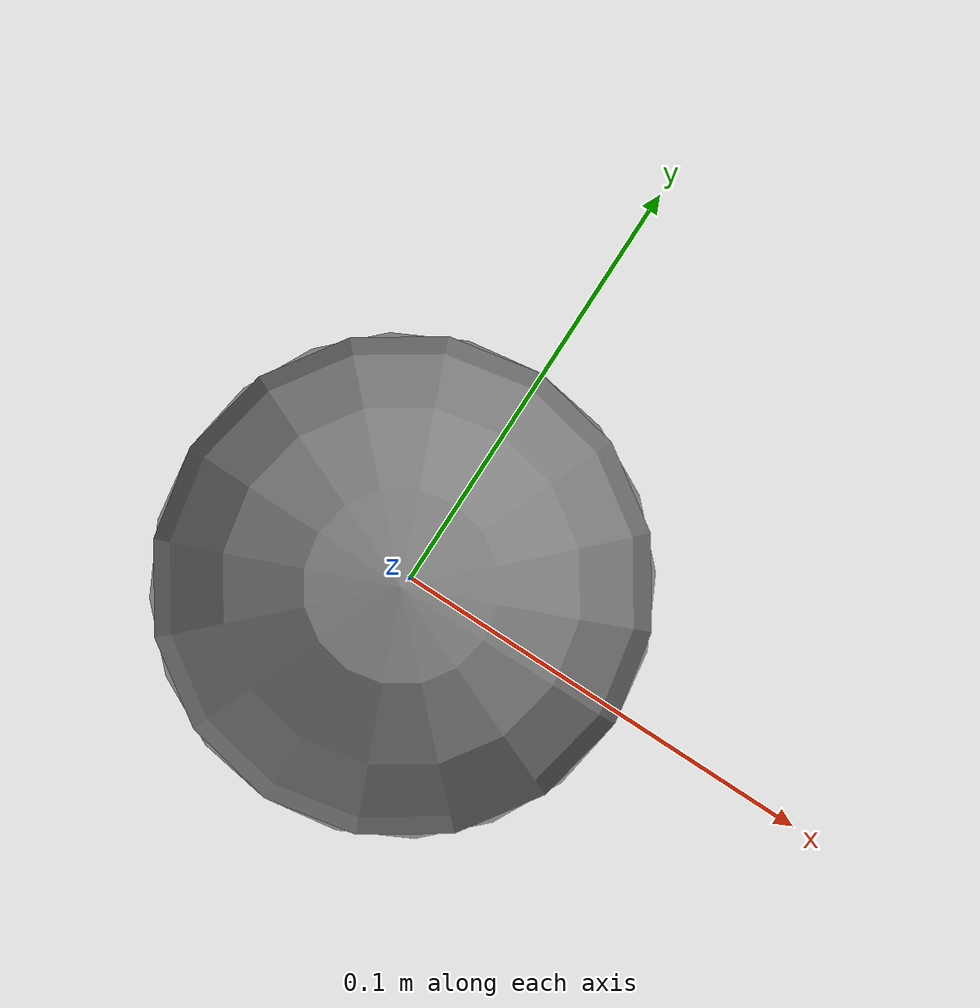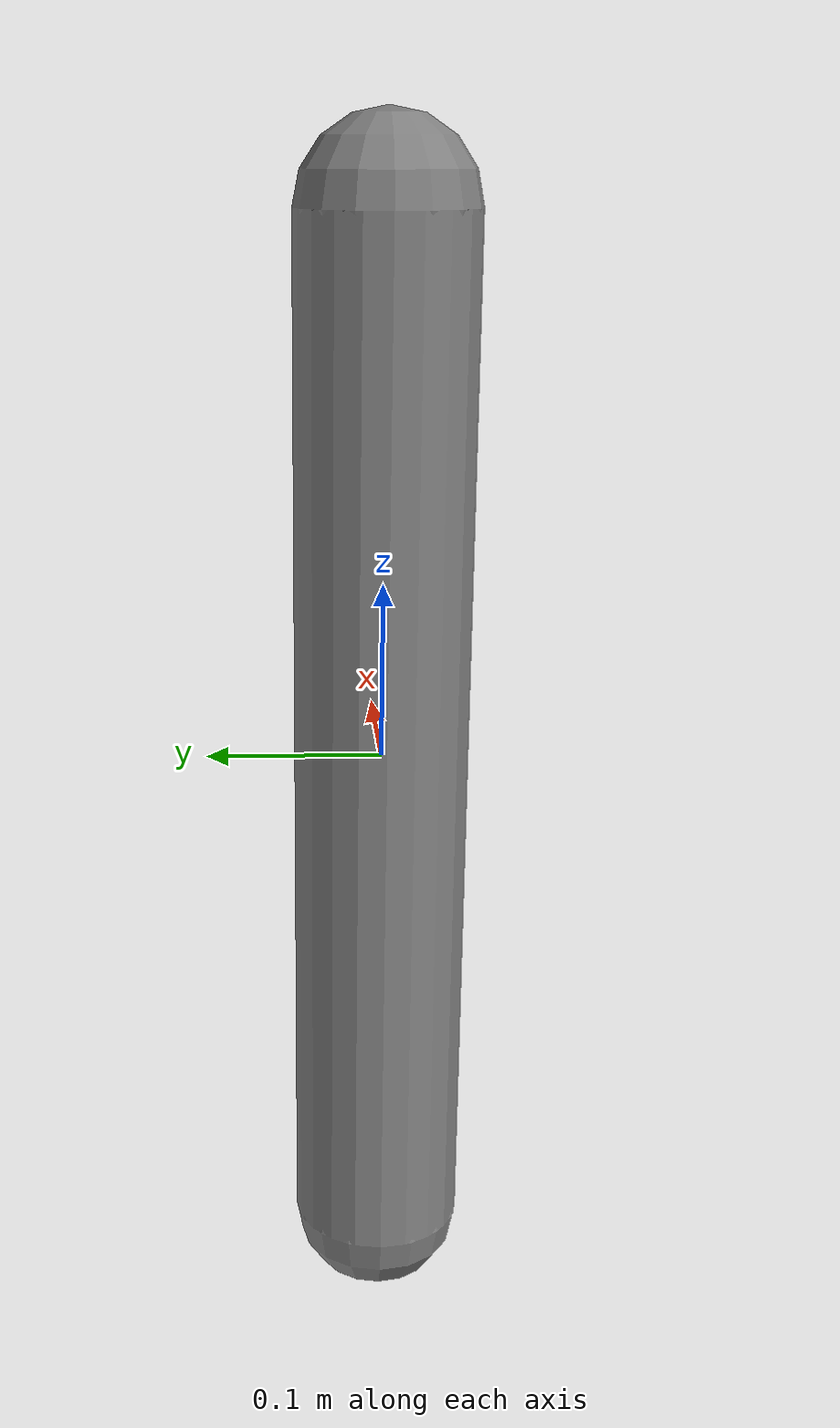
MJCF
<mujoco model="floss_noslip">
            <option gravity="0 0 -9.81" solver="PGS" cone="elliptic"
                    iterations="100" noslip_iterations="50" noslip_tolerance="1e-12"/>
            <worldbody>
                <body name="arm" pos="0 0 0">
                    <joint type="hinge" axis="0 0 1" frictionloss="0.1"/>
                    <geom type="capsule" size="0.05 0.3" mass="1.0"/>
                </body>
            </worldbody>
        </mujoco>
